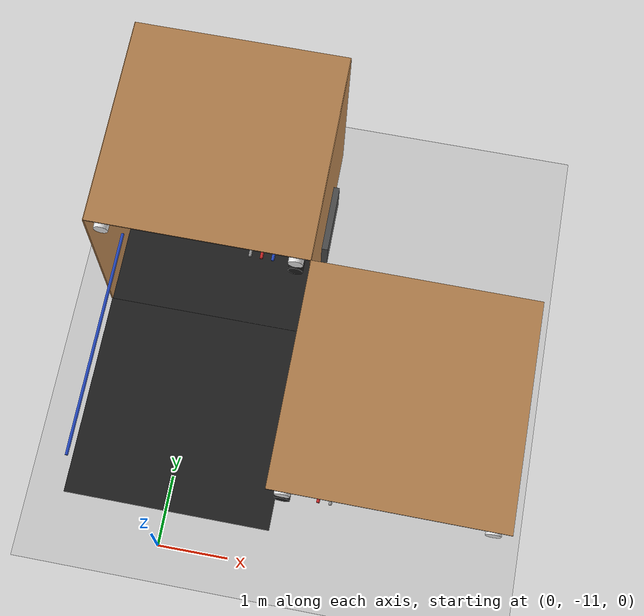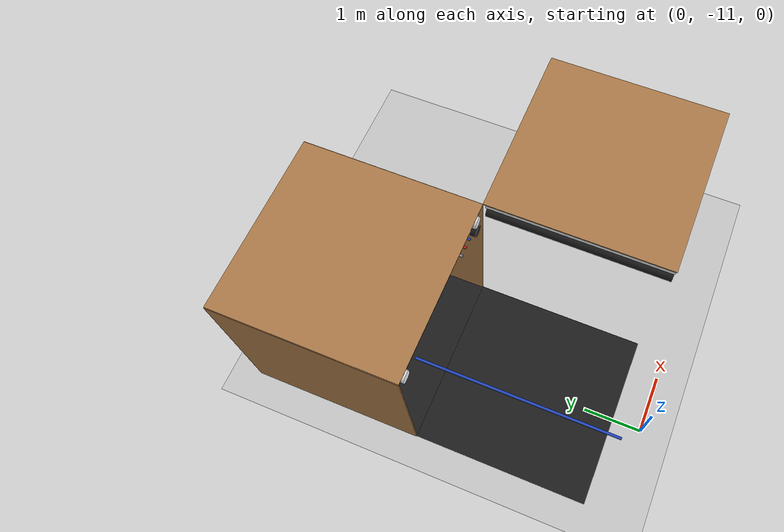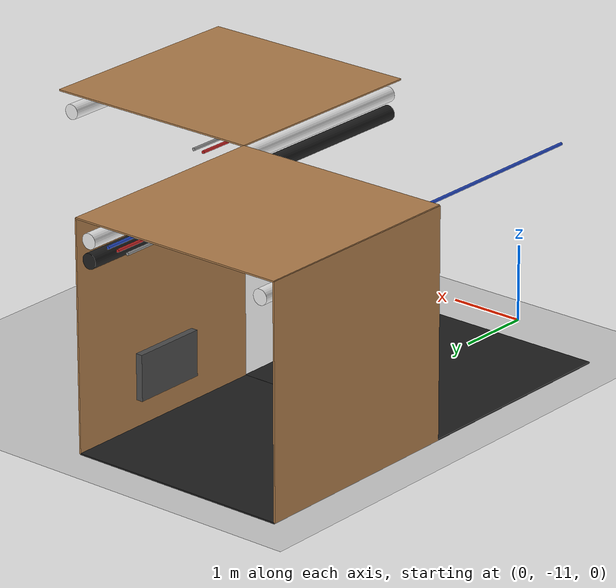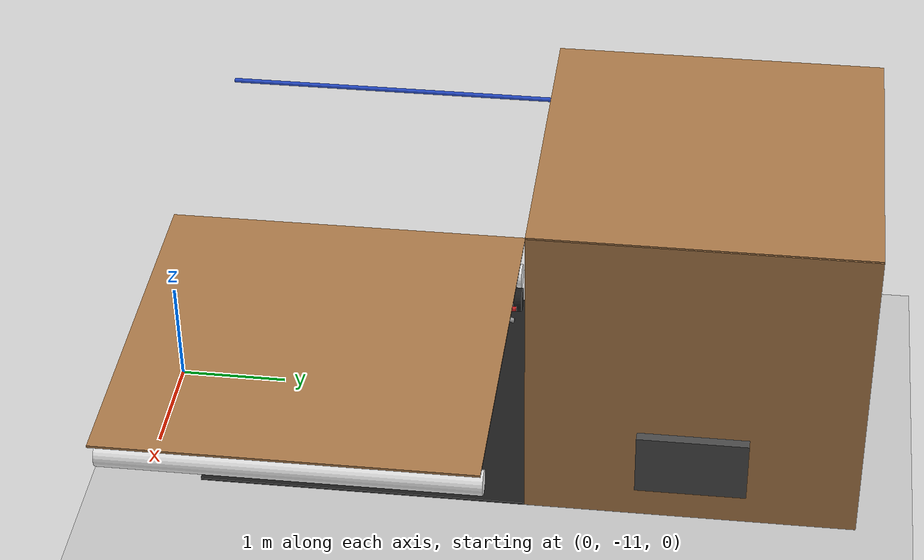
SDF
<sdf version="1.6">
 <world name="default">
  <model name="ground_plane">
   <static>1</static>
   <link name="link">
    <collision name="collision">
     <geometry><plane><normal>0 0 1</normal><size>200 200</size></plane></geometry>
     <surface><friction><ode><mu>100</mu><mu2>50</mu2></ode></friction></surface>
    </collision>
    <visual name="visual">
     <cast_shadows>0</cast_shadows>
     <geometry><plane><normal>0 0 1</normal><size>200 200</size></plane></geometry>
     <material>
      <script><uri>file://media/materials/scripts/gazebo.material</uri><name>Gazebo/Grey</name></script>
     </material>
    </visual>
   </link>
  </model>
  <model name="wall_front_1_-2_0_3">
   <static>1</static>
   <pose>1.5 -6.0 1.5 0.0 0.0 1.57</pose>
   <link name="link">
    <collision name="collision"><geometry><box><size>3 0.02 3</size></box></geometry></collision>
    <visual name="visual">
     <material>
      <script><name>Gazebo/Wood</name><uri>file://media/materials/scripts/gazebo.material</uri></script>
     </material>
     <geometry><box><size>3 0.02 3</size></box></geometry>
    </visual>
   </link>
  </model>
  <model name="wall_top_1_-3_0_2">
   <static>1</static>
   <pose>3.0 -9.0 3.0 1.57 0.0 3.14</pose>
   <link name="link">
    <collision name="collision"><geometry><box><size>3 0.02 3</size></box></geometry></collision>
    <visual name="visual">
     <material>
      <script><name>Gazebo/Wood</name><uri>file://media/materials/scripts/gazebo.material</uri></script>
     </material>
     <geometry><box><size>3 0.02 3</size></box></geometry>
    </visual>
   </link>
  </model>
  <model name="white_pipe_left_1_-3_0_2">
   <static>1</static>
   <pose>3.0 -9.0 2.76 0.0 0.0 3.14</pose>
   <link name="link_0">
    <visual name="visual">
     <pose>-1.3 0 0 1.57 0 0</pose>
     <geometry><cylinder><radius>0.1</radius><length>3</length></cylinder></geometry>
     <material>
      <script><uri>file://media/materials/scripts/gazebo.material</uri><name>Gazebo/White</name></script>
     </material>
    </visual>
    <collision name="collision">
     <pose>-1.3 0 0 1.57 0 0</pose>
     <geometry><cylinder><radius>0.1</radius><length>3</length></cylinder></geometry>
    </collision>
   </link>
  </model>
  <model name="white_pipe_right_1_-3_0_2">
   <static>1</static>
   <pose>3.0 -9.0 2.76 0.0 0.0 3.14</pose>
   <link name="link_0">
    <visual name="visual">
     <pose>1.3 0 0 1.57 0 0</pose>
     <geometry><cylinder><radius>0.1</radius><length>3</length></cylinder></geometry>
     <material>
      <script><uri>file://media/materials/scripts/gazebo.material</uri><name>Gazebo/White</name></script>
     </material>
    </visual>
    <collision name="collision">
     <pose>1.3 0 0 1.57 0 0</pose>
     <geometry><cylinder><radius>0.1</radius><length>3</length></cylinder></geometry>
    </collision>
   </link>
  </model>
  <model name="black_pipe_right_1_-3_0_2">
   <static>1</static>
   <pose>3.0 -9.0 2.76 0.0 0.0 3.14</pose>
   <link name="link_0">
    <visual name="visual">
     <pose>1.3 0 -0.25 1.57 0 0</pose>
     <geometry><cylinder><radius>0.1</radius><length>3</length></cylinder></geometry>
     <material>
      <script><uri>file://media/materials/scripts/gazebo.material</uri><name>Gazebo/Black</name></script>
     </material>
    </visual>
    <collision name="collision">
     <pose>1.3 0 -0.25 1.57 0 0</pose>
     <geometry><cylinder><radius>0.1</radius><length>3</length></cylinder></geometry>
    </collision>
   </link>
  </model>
  <model name="grey_pipe_right_1_-3_0_2">
   <static>1</static>
   <pose>3.0 -9.0 2.76 0.0 0.0 3.14</pose>
   <link name="link_0">
    <visual name="visual">
     <pose>0.7 0 0 1.57 0 0</pose>
     <geometry><cylinder><radius>0.02</radius><length>3</length></cylinder></geometry>
     <material>
      <script><uri>file://media/materials/scripts/gazebo.material</uri><name>Gazebo/Grey</name></script>
     </material>
    </visual>
    <collision name="collision">
     <pose>0.7 0 0 1.57 0 0</pose>
     <geometry><cylinder><radius>0.02</radius><length>3</length></cylinder></geometry>
    </collision>
   </link>
  </model>
  <model name="red_pipe_right_1_-3_0_2">
   <static>1</static>
   <pose>3.0 -9.0 2.76 0.0 0.0 3.14</pose>
   <link name="link_0">
    <visual name="visual">
     <pose>0.85 0 0 1.57 0 0</pose>
     <geometry><cylinder><radius>0.02</radius><length>3</length></cylinder></geometry>
     <material>
      <script><uri>file://media/materials/scripts/gazebo.material</uri><name>Gazebo/Red</name></script>
     </material>
    </visual>
    <collision name="collision">
     <pose>0.85 0 0 1.57 0 0</pose>
     <geometry><cylinder><radius>0.02</radius><length>3</length></cylinder></geometry>
    </collision>
   </link>
  </model>
  <model name="blue_pipe_right_1_0_-3_0_2">
   <static>1</static>
   <pose>0.0 -9.0 2.76 0.0 0.0 3.14</pose>
   <link name="link_0">
    <visual name="visual">
     <pose>1 0 0 1.57 0 0</pose>
     <geometry><cylinder><radius>0.02</radius><length>3</length></cylinder></geometry>
     <material>
      <script><uri>file://media/materials/scripts/gazebo.material</uri><name>Gazebo/Blue</name></script>
     </material>
    </visual>
    <collision name="collision">
     <pose>1 0 0 1.57 0 0</pose>
     <geometry><cylinder><radius>0.02</radius><length>3</length></cylinder></geometry>
    </collision>
   </link>
  </model>
  <model name="wall_bottom_0_-3_0_2">
   <static>1</static>
   <pose>0.0 -9.0 0.0 0.0 0.0 1.57</pose>
   <link name="link">
    <collision name="collision"><geometry><box><size>3 3 0.02</size></box></geometry></collision>
    <visual name="visual">
     <material>
      <script><name>Gazebo/Black</name><uri>file://media/materials/scripts/gazebo.material</uri></script>
     </material>
     <geometry><box><size>3 3 0.02</size></box></geometry>
    </visual>
   </link>
  </model>
  <model name="wall_right_0_-2_0_1">
   <static>1</static>
   <pose>1.5 -6.0 1.5 0.0 0.0 1.57</pose>
   <link name="link">
    <collision name="collision"><geometry><box><size>3 0.02 3</size></box></geometry></collision>
    <visual name="visual">
     <material>
      <script><name>Gazebo/Wood</name><uri>file://media/materials/scripts/gazebo.material</uri></script>
     </material>
     <geometry><box><size>3 0.02 3</size></box></geometry>
    </visual>
   </link>
  </model>
  <model name="wall_left_0_-2_0_1">
   <static>1</static>
   <pose>-1.5 -6.0 1.5 0.0 0.0 1.57</pose>
   <link name="link">
    <collision name="collision"><geometry><box><size>3 0.02 3</size></box></geometry></collision>
    <visual name="visual">
     <material>
      <script><name>Gazebo/Wood</name><uri>file://media/materials/scripts/gazebo.material</uri></script>
     </material>
     <geometry><box><size>3 0.02 3</size></box></geometry>
    </visual>
   </link>
  </model>
  <model name="wall_top_0_-2_0_1">
   <static>1</static>
   <pose>0.0 -6.0 3.0 1.57 0.0 0.0</pose>
   <link name="link">
    <collision name="collision"><geometry><box><size>3 0.02 3</size></box></geometry></collision>
    <visual name="visual">
     <material>
      <script><name>Gazebo/Wood</name><uri>file://media/materials/scripts/gazebo.material</uri></script>
     </material>
     <geometry><box><size>3 0.02 3</size></box></geometry>
    </visual>
   </link>
  </model>
  <model name="white_pipe_left_0_-2_0_1">
   <static>1</static>
   <pose>0.0 -6.0 2.76 0.0 0.0 0.0</pose>
   <link name="link_0">
    <visual name="visual">
     <pose>-1.3 0 0 1.57 0 0</pose>
     <geometry><cylinder><radius>0.1</radius><length>3</length></cylinder></geometry>
     <material>
      <script><uri>file://media/materials/scripts/gazebo.material</uri><name>Gazebo/White</name></script>
     </material>
    </visual>
    <collision name="collision">
     <pose>-1.3 0 0 1.57 0 0</pose>
     <geometry><cylinder><radius>0.1</radius><length>3</length></cylinder></geometry>
    </collision>
   </link>
  </model>
  <model name="white_pipe_right_0_-2_0_1">
   <static>1</static>
   <pose>0.0 -6.0 2.76 0.0 0.0 0.0</pose>
   <link name="link_0">
    <visual name="visual">
     <pose>1.3 0 0 1.57 0 0</pose>
     <geometry><cylinder><radius>0.1</radius><length>3</length></cylinder></geometry>
     <material>
      <script><uri>file://media/materials/scripts/gazebo.material</uri><name>Gazebo/White</name></script>
     </material>
    </visual>
    <collision name="collision">
     <pose>1.3 0 0 1.57 0 0</pose>
     <geometry><cylinder><radius>0.1</radius><length>3</length></cylinder></geometry>
    </collision>
   </link>
  </model>
  <model name="black_pipe_right_0_-2_0_1">
   <static>1</static>
   <pose>0.0 -6.0 2.76 0.0 0.0 0.0</pose>
   <link name="link_0">
    <visual name="visual">
     <pose>1.3 0 -0.25 1.57 0 0</pose>
     <geometry><cylinder><radius>0.1</radius><length>3</length></cylinder></geometry>
     <material>
      <script><uri>file://media/materials/scripts/gazebo.material</uri><name>Gazebo/Black</name></script>
     </material>
    </visual>
    <collision name="collision">
     <pose>1.3 0 -0.25 1.57 0 0</pose>
     <geometry><cylinder><radius>0.1</radius><length>3</length></cylinder></geometry>
    </collision>
   </link>
  </model>
  <model name="grey_pipe_right_0_-2_0_1">
   <static>1</static>
   <pose>0.0 -6.0 2.76 0.0 0.0 0.0</pose>
   <link name="link_0">
    <visual name="visual">
     <pose>0.7 0 0 1.57 0 0</pose>
     <geometry><cylinder><radius>0.02</radius><length>3</length></cylinder></geometry>
     <material>
      <script><uri>file://media/materials/scripts/gazebo.material</uri><name>Gazebo/Grey</name></script>
     </material>
    </visual>
    <collision name="collision">
     <pose>0.7 0 0 1.57 0 0</pose>
     <geometry><cylinder><radius>0.02</radius><length>3</length></cylinder></geometry>
    </collision>
   </link>
  </model>
  <model name="red_pipe_right_0_-2_0_1">
   <static>1</static>
   <pose>0.0 -6.0 2.76 0.0 0.0 0.0</pose>
   <link name="link_0">
    <visual name="visual">
     <pose>0.85 0 0 1.57 0 0</pose>
     <geometry><cylinder><radius>0.02</radius><length>3</length></cylinder></geometry>
     <material>
      <script><uri>file://media/materials/scripts/gazebo.material</uri><name>Gazebo/Red</name></script>
     </material>
    </visual>
    <collision name="collision">
     <pose>0.85 0 0 1.57 0 0</pose>
     <geometry><cylinder><radius>0.02</radius><length>3</length></cylinder></geometry>
    </collision>
   </link>
  </model>
  <model name="blue_pipe_right_0_-2_0_1">
   <static>1</static>
   <pose>0.0 -6.0 2.76 0.0 0.0 0.0</pose>
   <link name="link_0">
    <visual name="visual">
     <pose>1 0 0 1.57 0 0</pose>
     <geometry><cylinder><radius>0.02</radius><length>3</length></cylinder></geometry>
     <material>
      <script><uri>file://media/materials/scripts/gazebo.material</uri><name>Gazebo/Blue</name></script>
     </material>
    </visual>
    <collision name="collision">
     <pose>1 0 0 1.57 0 0</pose>
     <geometry><cylinder><radius>0.02</radius><length>3</length></cylinder></geometry>
    </collision>
   </link>
  </model>
  <model name="wall_bottom_0_-2_0_1">
   <static>1</static>
   <pose>0.0 -6.0 0.0 0.0 0.0 0.0</pose>
   <link name="link">
    <collision name="collision"><geometry><box><size>3 3 0.02</size></box></geometry></collision>
    <visual name="visual">
     <material>
      <script><name>Gazebo/Black</name><uri>file://media/materials/scripts/gazebo.material</uri></script>
     </material>
     <geometry><box><size>3 3 0.02</size></box></geometry>
    </visual>
   </link>
  </model>
  <model name="panel_0_-2_0_1">
   <static>1</static>
   <pose>1.5 -6.0 0.66 0.0 0.0 0.0</pose>
   <link name="link">
    <collision name="collision"><geometry><box><size>0.2 1 0.6</size></box></geometry></collision>
    <visual name="visual">
     <material>
      <script><name>Gazebo/DarkGrey</name><uri>file://media/materials/scripts/gazebo.material</uri></script>
     </material>
     <geometry><box><size>0.2 1 0.6</size></box></geometry>
    </visual>
   </link>
  </model>
 </world>
</sdf>
